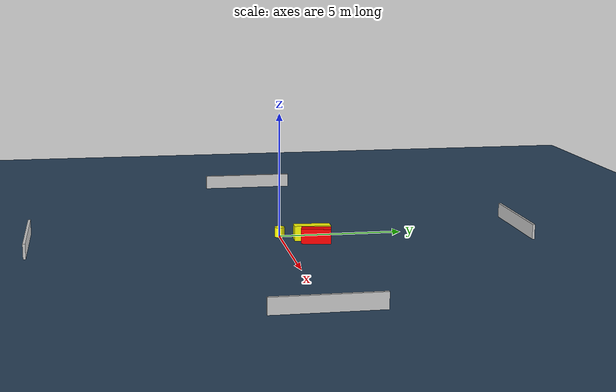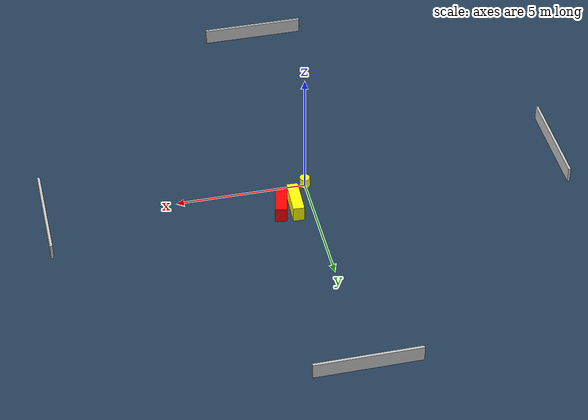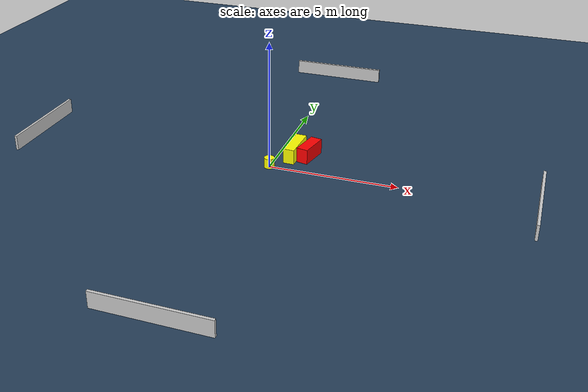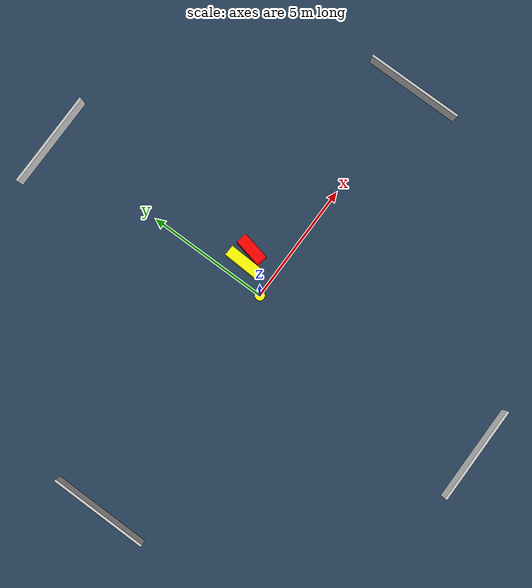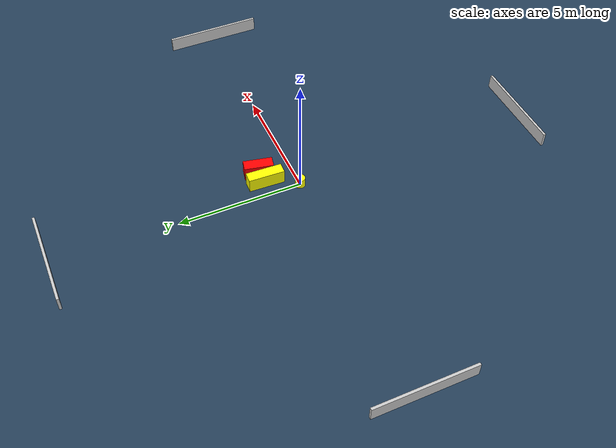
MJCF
<?xml version="1.0" ?>
<mujoco model="generated_environment">
  <option timestep="0.01" integrator="RK4" cone="elliptic"/>
  <default>
    <geom density="1"/>
  </default>
  <asset>
    <texture builtin="gradient" height="3072" name="skybox" rgb1="0.3 0.5 0.7" rgb2="0 0 0" type="skybox" width="512"/>
    <texture builtin="checker" height="300" name="groundplane" rgb1="0.2 0.3 0.4" rgb2="0.1 0.2 0.3" type="2d" width="300"/>
    <material name="groundplane" reflectance="0.2" texrepeat="5 5" texture="groundplane"/>
  </asset>
  <worldbody>
    <light dir="0 0 -1" directional="true" pos="0 0 1.5"/>
    <geom condim="3" friction="0.5 0.005 0.001" material="groundplane" name="floor" pos="0 0 0" size="0 0 0.05" type="plane"/>
    <body name="walls">
      <geom name="wall_1" condim="4" pos="-10.0 0.0 0.3" rgba="0.800000011920929 0.800000011920929 0.800000011920929 1.0" size="0.05 2.0 0.3" type="box"/>
      <geom name="wall_2" condim="4" pos="10.0 0.0 0.3" rgba="0.800000011920929 0.800000011920929 0.800000011920929 1.0" size="0.05 2.0 0.3" type="box"/>
      <geom name="wall_3" condim="4" pos="0.0 -10.0 0.3" rgba="0.800000011920929 0.800000011920929 0.800000011920929 1.0" size="2.0 0.05 0.3" type="box"/>
      <geom name="wall_4" condim="4" pos="0.0 10.0 0.3" rgba="0.800000011920929 0.800000011920929 0.800000011920929 1.0" size="2.0 0.05 0.3" type="box"/>
    </body>
    <body name="robot">
      <joint name="joint_x" type="slide" pos="0 0 0" axis="1 0 0"/>
      <joint name="joint_y" type="slide" pos="0 0 0" axis="0 1 0"/>
      <geom name="robot" type="cylinder" pos="0.0 0.0 0.2" size="0.2 0.2 0.0" mass="5.0" friction="1.0 0.005 0.0001" condim="4" rgba="1.0 1.0 0.0 1.0"/>
    </body>
    <body name="obstacle_1_movable">
      <geom name="obstacle_1_movable" condim="4" pos="0.6398285003237838 1.2159654491350045 0.3" euler="0 0 267.71580873726094" friction="0.0 0.005 0.001" rgba="1.0 1.0 0.0 1.0" size="0.7301183378812288 0.21871460229302264 0.3" type="box" mass="0.1"/>
      <joint type="free"/>
    </body>
    <body name="obstacle_2_static">
      <geom name="obstacle_2_static" condim="4" pos="1.2051558366516844 1.2807505081947113 0.3" euler="0 0 77.92544173421635" friction="0.0 0.005 0.001" rgba="1.0 0.0 0.0 1.0" size="0.5855860907106916 0.22736443322139124 0.3" type="box"/>
    </body>
  </worldbody>
  <actuator>
    <motor name="actuator_x" joint="joint_x" gear="1" ctrlrange="-1 1"/>
    <motor name="actuator_y" joint="joint_y" gear="1" ctrlrange="-1 1"/>
  </actuator>
</mujoco>
